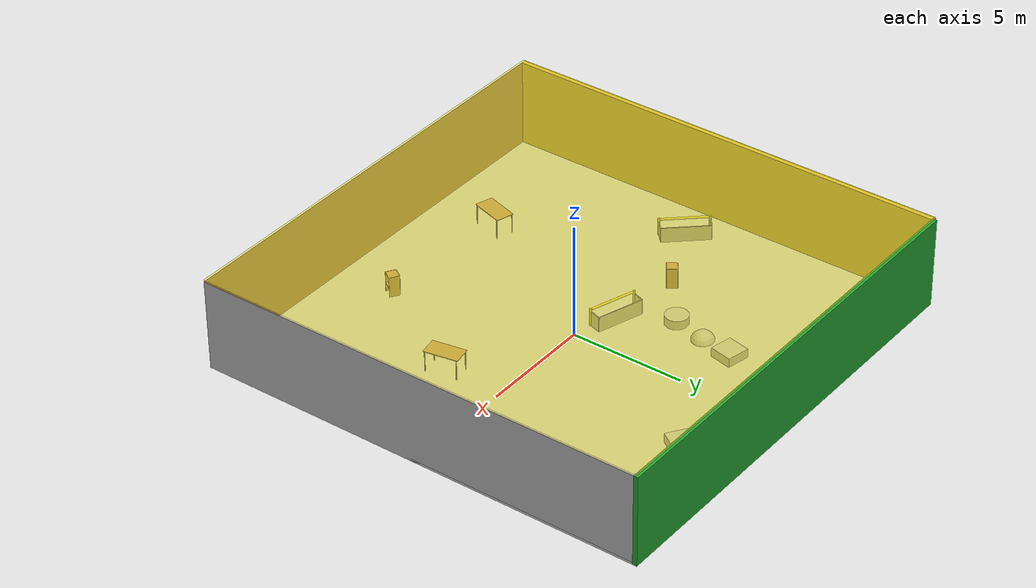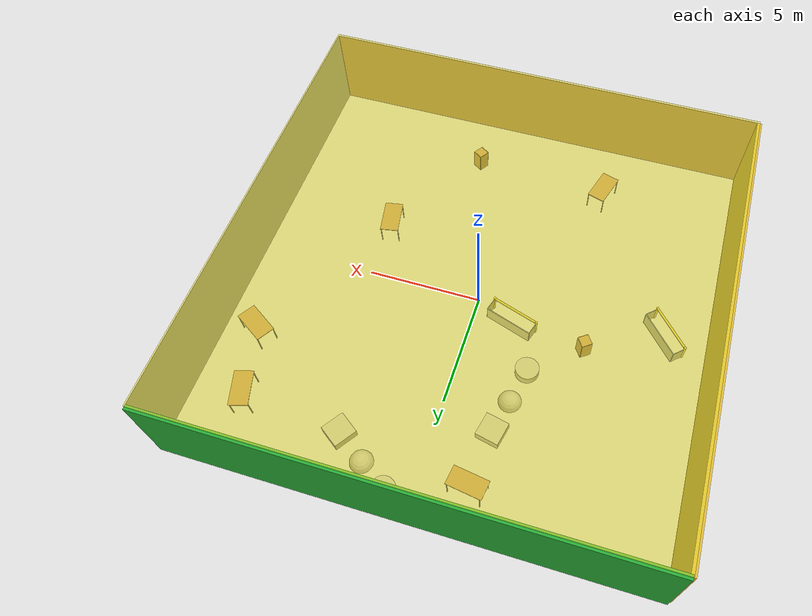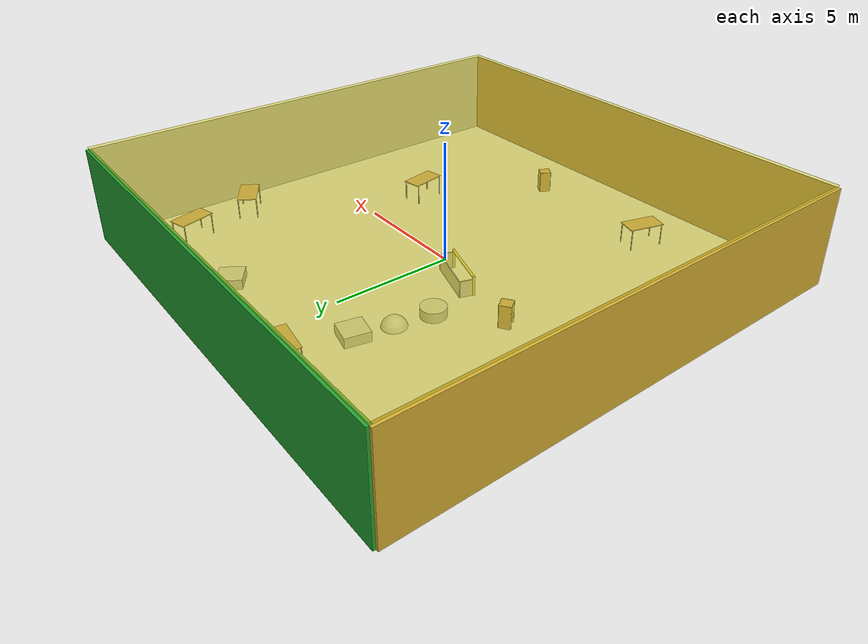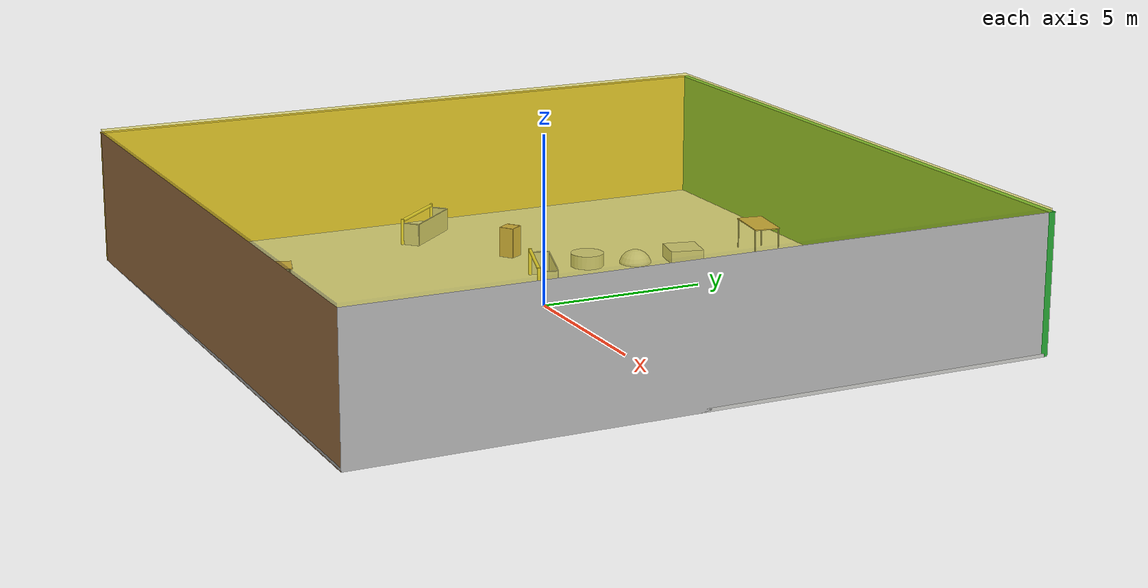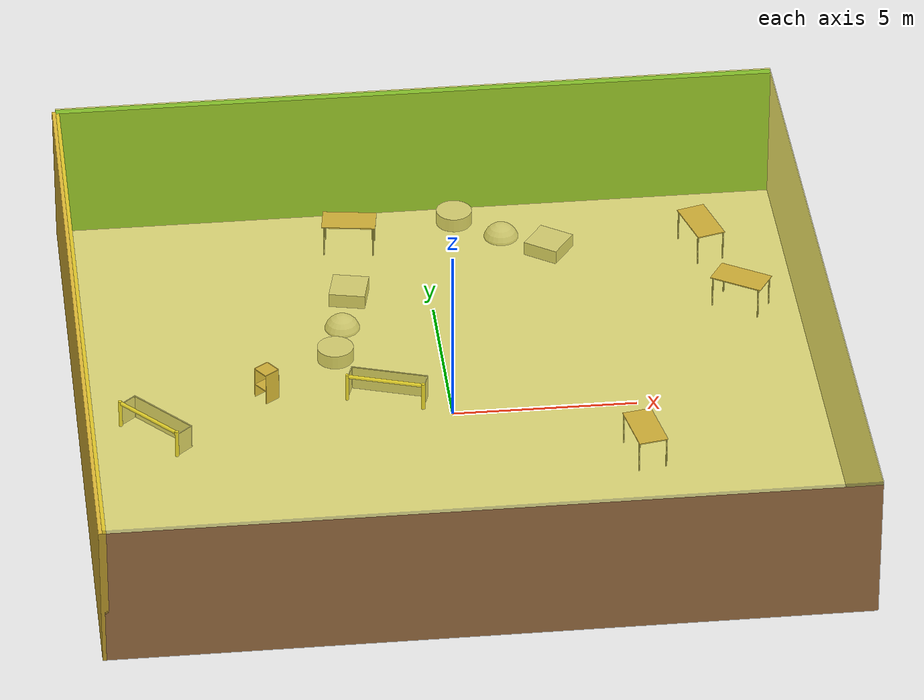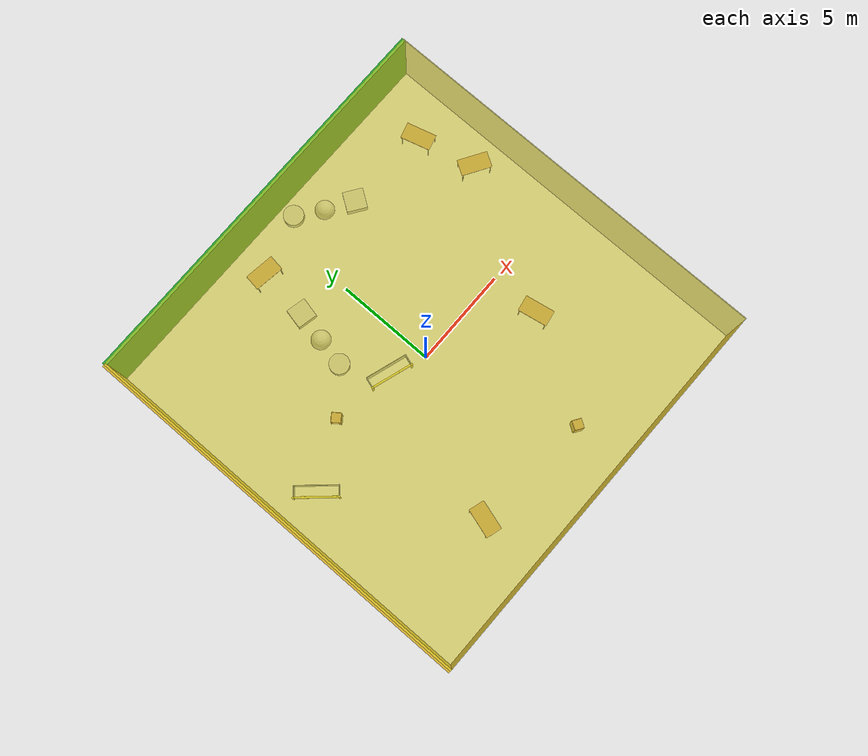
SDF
<sdf version="1.4">
 <world name="default">
  <physics type="ode">
   <max_step_size>0.001</max_step_size>
   <real_time_factor>1</real_time_factor>
   <real_time_update_rate>1000</real_time_update_rate>
   <gravity>0 0 -9.8</gravity>
  </physics>
  <scene><ambient>0.4 0.4 0.4 1</ambient><background>0.7 0.7 0.7 1</background><shadows>1</shadows></scene>
  <model name="Surrounding">
   <static>1</static>
   <link name="Ceiling">
    <collision name="Ceiling_Collision"><geometry><box><size>20 20 0.1</size></box></geometry></collision>
    <visual name="Ceiling_Visual">
     <geometry><box><size>20 20 0.1</size></box></geometry>
     <material>
      <script>
       <uri>file://media/materials/scripts/gazebo.material</uri>
       <name>Gazebo/YellowTransparent</name>
      </script>
     </material>
    </visual>
    <pose>0 0 4.05 0 0 0</pose>
   </link>
   <link name="Wall_South">
    <collision name="Wall_South_Collision">
     <geometry><box><size>20 0 4</size></box></geometry>
     <pose>0 0 2 0 -0 0</pose>
    </collision>
    <visual name="Wall_South_Visual">
     <pose>0 0 2 0 -0 0</pose>
     <geometry><box><size>20 0 4</size></box></geometry>
     <material>
      <script><uri>file://media/materials/scripts/gazebo.material</uri><name>Gazebo/WoodPallet</name></script>
     </material>
    </visual>
    <velocity_decay><linear>0</linear><angular>0</angular></velocity_decay>
    <pose>0 -10 0 0 -0 0</pose>
   </link>
   <link name="Wall_East">
    <collision name="Wall_21_Collision">
     <geometry><box><size>20 0 4</size></box></geometry>
     <pose>0 0 2 0 -0 0</pose>
    </collision>
    <visual name="Wall_21_Visual">
     <pose>0 0 2 0 -0 0</pose>
     <geometry><box><size>20 0 4</size></box></geometry>
     <material>
      <script><uri>file://media/materials/scripts/gazebo.material</uri><name>Gazebo/LightOn</name></script>
     </material>
    </visual>
    <velocity_decay><linear>0</linear><angular>0</angular></velocity_decay>
    <pose>10 0 0 0 -0 1.5708</pose>
   </link>
   <link name="Wall_North">
    <collision name="Wall_22_Collision">
     <geometry><box><size>20 0.2 4</size></box></geometry>
     <pose>0 0 2 0 -0 0</pose>
    </collision>
    <visual name="Wall_22_Visual">
     <pose>0 0 2 0 -0 0</pose>
     <geometry><box><size>20 0.2 4</size></box></geometry>
     <material>
      <script><uri>file://media/materials/scripts/gazebo.material</uri><name>Gazebo/GreenGlow</name></script>
     </material>
    </visual>
    <velocity_decay><linear>0</linear><angular>0</angular></velocity_decay>
    <pose>0 10 0 0 -0 0</pose>
   </link>
   <link name="Wall_West">
    <collision name="Wall_23_Collision">
     <geometry><box><size>20 0.2 4</size></box></geometry>
     <pose>0 0 2 0 -0 0</pose>
    </collision>
    <visual name="Wall_23_Visual">
     <pose>0 0 2 0 -0 0</pose>
     <geometry><box><size>20 0.2 4</size></box></geometry>
     <material>
      <script><uri>file://media/materials/scripts/gazebo.material</uri><name>Gazebo/Gold</name></script>
     </material>
    </visual>
    <velocity_decay><linear>0</linear><angular>0</angular></velocity_decay>
    <pose>-10 0 0 0 0 -1.5708</pose>
   </link>
   <link name="Ground_link">
    <collision name="collision">
     <pose>0 0 .05 0 -0 0</pose>
     <geometry><box><size>20 20 0.1</size></box></geometry>
    </collision>
    <visual name="visual">
     <pose>0 0 .05 0 -0 0</pose>
     <geometry><box><size>20 20 0.1</size></box></geometry>
     <material>
      <script><uri>file://media/materials/scripts/gazebo.material</uri><name>Gazebo/CeilingTiled</name></script>
     </material>
    </visual>
   </link>
   <static>1</static>
  </model>
  <spherical_coordinates>
   <surface_model>EARTH_WGS84</surface_model>
   <latitude_deg>0</latitude_deg>
   <longitude_deg>0</longitude_deg>
   <elevation>0</elevation>
   <heading_deg>0</heading_deg>
  </spherical_coordinates>
  <light name="lightball_0" type="diffuse">
   <diffuse>0.8 0.8 0.8 1</diffuse>
   <specular>0.2 0.2 0.2 1</specular>
   <attenuation>
    <range>100</range>
    <constant>0.7</constant>
    <linear>0.01</linear>
    <quadratic>0.001</quadratic>
   </attenuation>
   <direction>-0.5 0.1 -0.9</direction>
   <pose>5.42714078808 -1.09366837206 1.65205944569 0 0 0</pose>
  </light>
  <light name="lightball_1" type="diffuse">
   <diffuse>0.8 0.8 0.8 1</diffuse>
   <specular>0.2 0.2 0.2 1</specular>
   <attenuation>
    <range>100</range>
    <constant>0.7</constant>
    <linear>0.01</linear>
    <quadratic>0.001</quadratic>
   </attenuation>
   <direction>-0.5 0.1 -0.9</direction>
   <pose>-7.51324764493 -9.38199200248 3.59005177718 0 0 0</pose>
  </light>
  <light name="lightball_2" type="diffuse">
   <diffuse>0.8 0.8 0.8 1</diffuse>
   <specular>0.2 0.2 0.2 1</specular>
   <attenuation>
    <range>100</range>
    <constant>0.7</constant>
    <linear>0.01</linear>
    <quadratic>0.001</quadratic>
   </attenuation>
   <direction>-0.5 0.1 -0.9</direction>
   <pose>3.57408790052 -3.99523565299 1.14096023412 0 0 0</pose>
  </light>
  <light name="lightball_3" type="diffuse">
   <diffuse>0.8 0.8 0.8 1</diffuse>
   <specular>0.2 0.2 0.2 1</specular>
   <attenuation>
    <range>100</range>
    <constant>0.7</constant>
    <linear>0.01</linear>
    <quadratic>0.001</quadratic>
   </attenuation>
   <direction>-0.5 0.1 -0.9</direction>
   <pose>5.97397284655 1.30895295753 1.12236141551 0 0 0</pose>
  </light>
  <light name="lightball_4" type="diffuse">
   <diffuse>0.8 0.8 0.8 1</diffuse>
   <specular>0.2 0.2 0.2 1</specular>
   <attenuation>
    <range>100</range>
    <constant>0.7</constant>
    <linear>0.01</linear>
    <quadratic>0.001</quadratic>
   </attenuation>
   <direction>-0.5 0.1 -0.9</direction>
   <pose>-5.26900021283 -4.81028342425 0.723866160371 0 0 0</pose>
  </light>
  <light name="lightball_5" type="diffuse">
   <diffuse>0.8 0.8 0.8 1</diffuse>
   <specular>0.2 0.2 0.2 1</specular>
   <attenuation>
    <range>100</range>
    <constant>0.7</constant>
    <linear>0.01</linear>
    <quadratic>0.001</quadratic>
   </attenuation>
   <direction>-0.5 0.1 -0.9</direction>
   <pose>1.85560951167 -8.20340221586 2.22839785241 0 0 0</pose>
  </light>
  <light name="lightball_6" type="diffuse">
   <diffuse>0.8 0.8 0.8 1</diffuse>
   <specular>0.2 0.2 0.2 1</specular>
   <attenuation>
    <range>100</range>
    <constant>0.7</constant>
    <linear>0.01</linear>
    <quadratic>0.001</quadratic>
   </attenuation>
   <direction>-0.5 0.1 -0.9</direction>
   <pose>-9.3752439882 8.7929937558 2.71908734275 0 0 0</pose>
  </light>
  <light name="lightball_7" type="diffuse">
   <diffuse>0.8 0.8 0.8 1</diffuse>
   <specular>0.2 0.2 0.2 1</specular>
   <attenuation>
    <range>100</range>
    <constant>0.7</constant>
    <linear>0.01</linear>
    <quadratic>0.001</quadratic>
   </attenuation>
   <direction>-0.5 0.1 -0.9</direction>
   <pose>-2.81417501822 -5.43319522104 1.58519539576 0 0 0</pose>
  </light>
  <light name="lightball_8" type="diffuse">
   <diffuse>0.8 0.8 0.8 1</diffuse>
   <specular>0.2 0.2 0.2 1</specular>
   <attenuation>
    <range>100</range>
    <constant>0.7</constant>
    <linear>0.01</linear>
    <quadratic>0.001</quadratic>
   </attenuation>
   <direction>-0.5 0.1 -0.9</direction>
   <pose>7.83498553637 -6.94615041679 0.692335783519 0 0 0</pose>
  </light>
  <light name="lightball_9" type="diffuse">
   <diffuse>0.8 0.8 0.8 1</diffuse>
   <specular>0.2 0.2 0.2 1</specular>
   <attenuation>
    <range>100</range>
    <constant>0.7</constant>
    <linear>0.01</linear>
    <quadratic>0.001</quadratic>
   </attenuation>
   <direction>-0.5 0.1 -0.9</direction>
   <pose>3.43536574292 4.90257670259 1.66067484598 0 0 0</pose>
  </light>
  <light name="lightball_10" type="diffuse">
   <diffuse>0.8 0.8 0.8 1</diffuse>
   <specular>0.2 0.2 0.2 1</specular>
   <attenuation>
    <range>100</range>
    <constant>0.7</constant>
    <linear>0.01</linear>
    <quadratic>0.001</quadratic>
   </attenuation>
   <direction>-0.5 0.1 -0.9</direction>
   <pose>-9.72382875987 3.70498645717 1.87444900601 0 0 0</pose>
  </light>
  <include>
   <uri>model://robocup_3Dsim_goal</uri>
   <pose>-8.24331390351 -0.520874328822 0 0 0 0.732760141135</pose>
  </include>
  <include><uri>model://table</uri><pose>-3.98895580907 -6.98032386136 0 0 0 1.27935383258</pose></include>
  <include><uri>model://cabinet</uri><pose>-4.92960342896 1.17774521711 0 0 0 0.617174987316</pose></include>
  <include>
   <uri>model://robocup_3Dsim_goal</uri>
   <pose>-1.77914430347 0.519714218414 0 0 0 1.255464567</pose>
  </include>
  <include>
   <uri>model://textured_shapes</uri>
   <pose>-2.59218904657 4.27167288751 0 0 0 2.9233483009</pose>
  </include>
  <include><uri>model://table</uri><pose>-2.02470807246 8.22399169125 0 0 0 2.99580572734</pose></include>
  <include><uri>model://cabinet</uri><pose>2.07485334789 -7.40334871143 0 0 0 2.55875585781</pose></include>
  <include>
   <uri>model://textured_shapes</uri>
   <pose>2.25469228284 8.33618089462 0 0 0 0.965908364265</pose>
  </include>
  <include><uri>model://table</uri><pose>4.88579443247 -2.54697726939 0 0 0 1.74990796673</pose></include>
  <include><uri>model://table</uri><pose>8.43682320138 4.25352468583 0 0 0 2.58668912192</pose></include>
  <include><uri>model://table</uri><pose>7.71868315272 7.13986236791 0 0 0 1.84112781413</pose></include>
 </world>
</sdf>

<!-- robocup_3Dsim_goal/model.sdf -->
<sdf version="1.5">
  <model name="robocup_3d_goal">
    <static>true</static>
    <link name="left_post">
      <pose>0 1.05 0.45 0 0 0</pose>
      <collision name="collision">
        <geometry>
          <cylinder>
            <radius>0.05</radius>
            <length>0.9</length>
          </cylinder>
        </geometry>
      </collision>
      <visual name="visual">
        <geometry>
          <cylinder>
            <radius>0.05</radius>
            <length>0.9</length>
          </cylinder>
        </geometry>
        <material>
          <script>
            <uri>file://media/materials/scripts/gazebo.material</uri>
            <name>Gazebo/ZincYellow</name>
          </script>
        </material>
      </visual>
    </link>
    <link name="left_support_horiz_lower">
      <pose>0.30 1.05 0.01 0 0 0</pose>
      <collision name="collision">
        <geometry>
          <box>
            <size>0.50 0.02 0.02</size>
          </box>
        </geometry>
      </collision>
      <visual name="visual">
        <geometry>
          <box>
            <size>0.50 0.02 0.02</size>
          </box>
        </geometry>
        <material>
          <script>
            <uri>file://media/materials/scripts/gazebo.material</uri>
            <name>Gazebo/White</name>
          </script>
        </material>
      </visual>
    </link>
    <link name="left_support_horiz_upper">
      <pose>0.30 1.05 0.79 0 0 0</pose>
      <collision name="collision">
        <geometry>
          <box>
            <size>0.50 0.02 0.02</size>
          </box>
        </geometry>
      </collision>
      <visual name="visual">
        <geometry>
          <box>
            <size>0.50 0.02 0.02</size>
          </box>
        </geometry>
        <material>
          <script>
            <uri>file://media/materials/scripts/gazebo.material</uri>
            <name>Gazebo/White</name>
          </script>
        </material>
      </visual>
    </link>
    <link name="left_support_vertical">
      <pose>0.56 1.05 0.4 0 1.5708 0</pose>
      <collision name="collision">
        <geometry>
          <box>
            <size>0.80 0.02 0.02</size>
          </box>
        </geometry>
      </collision>
      <visual name="visual">
        <geometry>
          <box>
            <size>0.80 0.02 0.02</size>
          </box>
        </geometry>
        <material>
          <script>
            <uri>file://media/materials/scripts/gazebo.material</uri>
            <name>Gazebo/White</name>
          </script>
        </material>
      </visual>
    </link>
    <link name="right_support_horiz_lower">
      <pose>0.30 -1.05 0.01 0 0 0</pose>
      <collision name="collision">
        <geometry>
          <box>
            <size>0.50 0.02 0.02</size>
          </box>
        </geometry>
      </collision>
      <visual name="visual">
        <geometry>
          <box>
            <size>0.50 0.02 0.02</size>
          </box>
        </geometry>
        <material>
          <script>
            <uri>file://media/materials/scripts/gazebo.material</uri>
            <name>Gazebo/White</name>
          </script>
        </material>
      </visual>
    </link>
    <link name="right_support_horiz_upper">
      <pose>0.30 -1.05 0.79 0 0 0</pose>
      <collision name="collision">
        <geometry>
          <box>
            <size>0.50 0.02 0.02</size>
          </box>
        </geometry>
      </collision>
      <visual name="visual">
        <geometry>
          <box>
            <size>0.50 0.02 0.02</size>
          </box>
        </geometry>
        <material>
          <script>
            <uri>file://media/materials/scripts/gazebo.material</uri>
            <name>Gazebo/White</name>
          </script>
        </material>
      </visual>
    </link>
    <link name="right_support_vertical">
      <pose>0.56 -1.05 0.4 0 1.5708 0</pose>
      <collision name="collision">
        <geometry>
          <box>
            <size>0.80 0.02 0.02</size>
          </box>
        </geometry>
      </collision>
      <visual name="visual">
        <geometry>
          <box>
            <size>0.80 0.02 0.02</size>
          </box>
        </geometry>
        <material>
          <script>
            <uri>file://media/materials/scripts/gazebo.material</uri>
            <name>Gazebo/White</name>
          </script>
        </material>
      </visual>
    </link>
    <link name="center_support_horiz_lower">
      <pose>0.56 0 0.01 0 1.5708 0</pose>
      <collision name="collision">
        <geometry>
          <box>
            <size>0.02 2.08 0.02</size>
          </box>
        </geometry>
      </collision>
      <visual name="visual">
        <geometry>
          <box>
            <size>0.02 2.08 0.02</size>
          </box>
        </geometry>
        <material>
          <script>
            <uri>file://media/materials/scripts/gazebo.material</uri>
            <name>Gazebo/White</name>
          </script>
        </material>
      </visual>
    </link>
    <link name="center_support_horiz_upper">
      <pose>0.56 0 0.79 0 1.5708 0</pose>
      <collision name="collision">
        <geometry>
          <box>
            <size>0.02 2.08 0.02</size>
          </box>
        </geometry>
      </collision>
      <visual name="visual">
        <geometry>
          <box>
            <size>0.02 2.08 0.02</size>
          </box>
        </geometry>
        <material>
          <script>
            <uri>file://media/materials/scripts/gazebo.material</uri>
            <name>Gazebo/White</name>
          </script>
        </material>
      </visual>
    </link>
    <link name="right_post">
      <pose>0 -1.05 0.45 0 0 0</pose>
      <collision name="collision">
        <geometry>
          <cylinder>
            <radius>0.05</radius>
            <length>0.9</length>
          </cylinder>
        </geometry>
      </collision>
      <visual name="visual">
        <geometry>
          <cylinder>
            <radius>0.05</radius>
            <length>0.9</length>
          </cylinder>
        </geometry>
        <material>
          <script>
            <uri>file://media/materials/scripts/gazebo.material</uri>
            <name>Gazebo/ZincYellow</name>
          </script>
        </material>
      </visual>
    </link>
    <link name="crossbar">
      <pose>0 0 0.85 1.57 1.57 0</pose>
      <collision name="collision">
        <geometry>
          <cylinder>
            <radius>0.05</radius>
            <length>2.0</length>
          </cylinder>
        </geometry>
      </collision>
      <visual name="visual">
        <geometry>
          <cylinder>
            <radius>0.05</radius>
            <length>2.0</length>
          </cylinder>
        </geometry>
        <material>
          <script>
            <uri>file://media/materials/scripts/gazebo.material</uri>
            <name>Gazebo/ZincYellow</name>
          </script>
        </material>
      </visual>
    </link>
    <link name="center_net">
      <pose>0.56 0 0.40 0 0 0</pose>
      <collision name="collision">
        <geometry>
          <box>
            <size>0.01 2.1 0.80</size>
          </box>
        </geometry>
      </collision>
      <visual name="visual">
        <geometry>
          <box>
            <size>0.01 2.1 0.80</size>
          </box>
        </geometry>
        <material>
          <script>
            <uri>model://../model_source/models/robocup09_spl_field/materials/scripts/</uri>
            <uri>model://../model_source/models/robocup09_spl_field/materials/textures/</uri>
            <name>RoboCup/Net</name>
          </script>
        </material>
      </visual>
    </link>
    <link name="left_net">
      <pose>0.30 1.05 0.40 0 0 0</pose>
      <collision name="collision">
        <geometry>
          <box>
            <size>0.50 0.01 0.76</size>
          </box>
        </geometry>
      </collision>
      <visual name="visual">
        <geometry>
          <box>
            <size>0.50 0.01 0.76</size>
          </box>
        </geometry>
        <material>
          <script>
            <uri>model://../model_source/models/robocup09_spl_field/materials/scripts/</uri>
            <uri>model://../model_source/models/robocup09_spl_field/materials/textures/</uri>
            <name>RoboCup/Net</name>
          </script>
        </material>
      </visual>
    </link>
    <link name="right_net">
      <pose>0.30 -1.05 0.40 0 0 0</pose>
      <collision name="collision">
        <geometry>
          <box>
            <size>0.50 0.01 0.76</size>
          </box>
        </geometry>
      </collision>
      <visual name="visual">
        <geometry>
          <box>
            <size>0.50 0.01 0.76</size>
          </box>
        </geometry>
        <material>
          <script>
            <uri>model://../model_source/models/robocup09_spl_field/materials/scripts/</uri>
            <uri>model://../model_source/models/robocup09_spl_field/materials/textures/</uri>
            <name>RoboCup/Net</name>
          </script>
        </material>
      </visual>
    </link>
  </model>
</sdf>

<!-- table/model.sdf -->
<sdf version="1.5">
  <model name="table">
    <static>true</static>
    <link name="link">
      <collision name="surface">
        <pose>0 0 1.0 0 0 0</pose>
        <geometry>
          <box>
            <size>1.5 0.8 0.03</size>
          </box>
        </geometry>
        <surface>
          <friction>
            <ode>
              <mu>0.6</mu>
              <mu2>0.6</mu2>
            </ode>
          </friction>
        </surface>
      </collision>
      <visual name="visual1">
        <pose>0 0 1.0 0 0 0</pose>
        <geometry>
          <box>
            <size>1.5 0.8 0.03</size>
          </box>
        </geometry>
        <material>
          <script>
            <uri>model://media/materials/scripts/gazebo.material</uri>
            <name>Gazebo/Wood</name>
          </script>
        </material>
      </visual>
      <collision name="front_left_leg">
        <pose>0.68 0.38 0.5 0 0 0</pose>
        <geometry>
          <cylinder>
            <radius>0.02</radius>
            <length>1.0</length>
          </cylinder>
        </geometry>
      </collision>
      <visual name="front_left_leg">
        <pose>0.68 0.38 0.5 0 0 0</pose>
        <geometry>
          <cylinder>
            <radius>0.02</radius>
            <length>1.0</length>
          </cylinder>
        </geometry>
        <material>
          <script>
            <uri>model://media/materials/scripts/gazebo.material</uri>
            <name>Gazebo/Grey</name>
          </script>
        </material>
      </visual>
      <collision name="front_right_leg">
        <pose>0.68 -0.38 0.5 0 0 0</pose>
        <geometry>
          <cylinder>
            <radius>0.02</radius>
            <length>1.0</length>
          </cylinder>
        </geometry>
      </collision>
      <visual name="front_right_leg">
        <pose>0.68 -0.38 0.5 0 0 0</pose>
        <geometry>
          <cylinder>
            <radius>0.02</radius>
            <length>1.0</length>
          </cylinder>
        </geometry>
        <material>
          <script>
            <uri>model://media/materials/scripts/gazebo.material</uri>
            <name>Gazebo/Grey</name>
          </script>
        </material>
      </visual>
      <collision name="back_right_leg">
        <pose>-0.68 -0.38 0.5 0 0 0</pose>
        <geometry>
          <cylinder>
            <radius>0.02</radius>
            <length>1.0</length>
          </cylinder>
        </geometry>
      </collision>
      <visual name="back_right_leg">
        <pose>-0.68 -0.38 0.5 0 0 0</pose>
        <geometry>
          <cylinder>
            <radius>0.02</radius>
            <length>1.0</length>
          </cylinder>
        </geometry>
        <material>
          <script>
            <uri>model://media/materials/scripts/gazebo.material</uri>
            <name>Gazebo/Grey</name>
          </script>
        </material>
      </visual>
      <collision name="back_left_leg">
        <pose>-0.68 0.38 0.5 0 0 0</pose>
        <geometry>
          <cylinder>
            <radius>0.02</radius>
            <length>1.0</length>
          </cylinder>
        </geometry>
      </collision>
      <visual name="back_left_leg">
        <pose>-0.68 0.38 0.5 0 0 0</pose>
        <geometry>
          <cylinder>
            <radius>0.02</radius>
            <length>1.0</length>
          </cylinder>
        </geometry>
        <material>
          <script>
            <uri>model://media/materials/scripts/gazebo.material</uri>
            <name>Gazebo/Grey</name>
          </script>
        </material>
      </visual>
    </link>
  </model>
</sdf>

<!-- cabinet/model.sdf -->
<sdf version="1.5">
  <model name="cabinet">
    <static>true</static>
    <link name="cabinet_bottom_plate">
      <inertial>
        <pose>0 0 -1 0 0 0</pose>
        <inertia>
          <ixx>2.050000</ixx>
          <ixy>0</ixy>
          <ixz>0</ixz>
          <iyy>2.050000</iyy>
          <iyz>0</iyz>
          <izz>2.050000</izz>
        </inertia>
        <mass>25.000000</mass>
      </inertial>
      <collision name="cabinet_bottom_plate_geom">
        <pose>0 0 0.010000 0 0 0</pose>
        <geometry>
          <box>
            <size>0.450000 0.450000 0.020000</size>
          </box>
        </geometry>
      </collision>
      <visual name="cabinet_bottom_plate_geom_visual">
        <pose>0 0 0.010000 0 0 0</pose>
        <geometry>
          <box>
            <size>0.450000 0.450000 0.020000</size>
          </box>
        </geometry>
        <material>
          <script>
            <uri>model://media/materials/scripts/gazebo.material</uri>
            <name>Gazebo/Wood</name>
          </script>
        </material>
      </visual>
      <collision name="cabinet_bottom_plate_geom_cabinet_back_plate">
        <pose>0.235000 0 0.510000 0 0 0</pose>
        <geometry>
          <box>
            <size>0.020000 0.450000 1.020000</size>
          </box>
        </geometry>
      </collision>
      <visual name="cabinet_bottom_plate_geom_cabinet_back_plate_visual">
        <pose>0.235000 0 0.510000 0 0 0</pose>
        <geometry>
          <box>
            <size>0.020000 0.450000 1.020000</size>
          </box>
        </geometry>
        <material>
          <script>
            <uri>model://media/materials/scripts/gazebo.material</uri>
            <name>Gazebo/Wood</name>
          </script>
        </material>
      </visual>
      <collision name="cabinet_bottom_plate_geom_cabinet_left_plate">
        <pose>0 0.235000 0.510000 0 0 0</pose>
        <geometry>
          <box>
            <size>0.450000 0.020000 1.020000</size>
          </box>
        </geometry>
      </collision>
      <visual name="cabinet_bottom_plate_geom_cabinet_left_plate_visual">
        <pose>0 0.235000 0.510000 0 0 0</pose>
        <geometry>
          <box>
            <size>0.450000 0.020000 1.020000</size>
          </box>
        </geometry>
        <material>
          <script>
            <uri>model://media/materials/scripts/gazebo.material</uri>
            <name>Gazebo/Wood</name>
          </script>
        </material>
      </visual>
      <collision name="cabinet_bottom_plate_geom_cabinet_middle_plate">
        <pose>0 0 0.510000 0 0 0</pose>
        <geometry>
          <box>
            <size>0.450000 0.450000 0.020000</size>
          </box>
        </geometry>
      </collision>
      <visual name="cabinet_bottom_plate_geom_cabinet_middle_plate_visual">
        <pose>0 0 0.510000 0 0 0</pose>
        <geometry>
          <box>
            <size>0.450000 0.450000 0.020000</size>
          </box>
        </geometry>
        <material>
          <script>
            <uri>model://media/materials/scripts/gazebo.material</uri>
            <name>Gazebo/Wood</name>
          </script>
        </material>
      </visual>
      <collision name="cabinet_bottom_plate_geom_cabinet_right_plate">
        <pose>0 -0.235000 0.510000 0 0 0</pose>
        <geometry>
          <box>
            <size>0.450000 0.020000 1.020000</size>
          </box>
        </geometry>
      </collision>
      <visual name="cabinet_bottom_plate_geom_cabinet_right_plate_visual">
        <pose>0 -0.235000 0.510000 0 0 0</pose>
        <geometry>
          <box>
            <size>0.450000 0.020000 1.020000</size>
          </box>
        </geometry>
        <material>
          <script>
            <uri>model://media/materials/scripts/gazebo.material</uri>
            <name>Gazebo/Wood</name>
          </script>
        </material>
      </visual>
      <collision name="cabinet_bottom_plate_geom_cabinet_top_plate">
        <pose>0 0 1.010000 0 0 0</pose>
        <geometry>
          <box>
            <size>0.450000 0.450000 0.020000</size>
          </box>
        </geometry>
      </collision>
      <visual name="cabinet_bottom_plate_geom_cabinet_top_plate_visual">
        <pose>0 0 1.010000 0 0 0</pose>
        <geometry>
          <box>
            <size>0.450000 0.450000 0.020000</size>
          </box>
        </geometry>
        <material>
          <script>
            <uri>model://media/materials/scripts/gazebo.material</uri>
            <name>Gazebo/Wood</name>
          </script>
        </material>
      </visual>
    </link>
  </model>
</sdf>

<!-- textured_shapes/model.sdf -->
<sdf version="1.6">
  <model name="textured_shapes">
    <pose>0 0 0.5 0 0 0</pose>
    <link name="box">
      <pose>0 -1.5 0 0 0 0</pose>
      <collision name="collision">
        <geometry>
          <box>
            <size>1 1 1</size>
          </box>
        </geometry>
      </collision>
      <visual name="visual">
        <geometry>
          <box>
            <size>1 1 1</size>
          </box>
        </geometry>
        <material>
          <script>
            <uri>model://../model_source/models/textured_shapes/materials/scripts</uri>
            <uri>model://../model_source/models/textured_shapes/materials/textures</uri>
            <name>TexturedShape/Squares</name>
          </script>
        </material>
      </visual>
    </link>
    <link name="sphere">
      <collision name="collision">
        <geometry>
          <sphere>
            <radius>0.5</radius>
          </sphere>
        </geometry>
      </collision>
      <visual name="visual">
        <geometry>
          <sphere>
            <radius>0.5</radius>
          </sphere>
        </geometry>
        <material>
          <script>
            <uri>model://../model_source/models/textured_shapes/materials/scripts</uri>
            <uri>model://../model_source/models/textured_shapes/materials/textures</uri>
            <name>TexturedShape/Squares</name>
          </script>
        </material>
      </visual>
    </link>
    <link name="cylinder">
      <pose>0 1.5 0 0 0 0</pose>
      <collision name="collision">
        <geometry>
          <cylinder>
            <radius>0.5</radius>
            <length>1</length>
          </cylinder>
        </geometry>
      </collision>
      <visual name="visual">
        <geometry>
          <cylinder>
            <radius>0.5</radius>
            <length>1</length>
          </cylinder>
        </geometry>
        <material>
          <script>
            <uri>model://../model_source/models/textured_shapes/materials/scripts</uri>
            <uri>model://../model_source/models/textured_shapes/materials/textures</uri>
            <name>TexturedShape/Squares</name>
          </script>
        </material>
      </visual>
    </link>
  </model>
</sdf>
